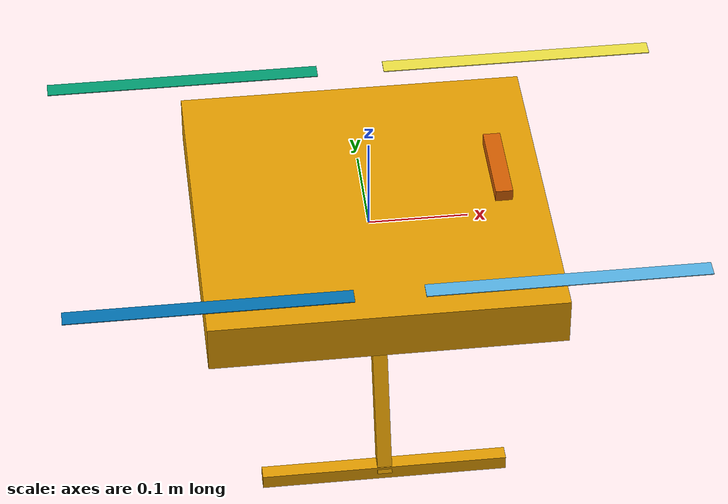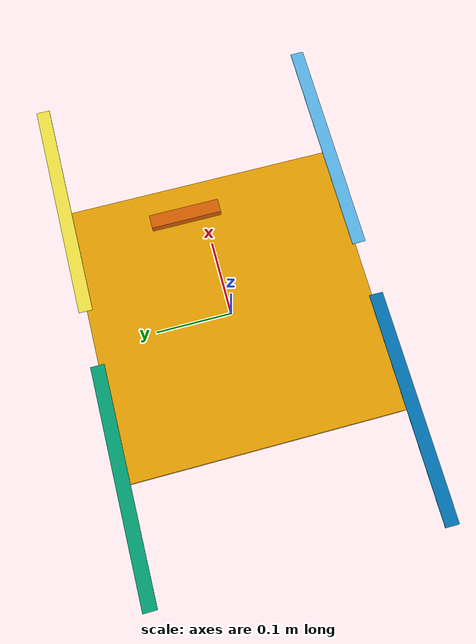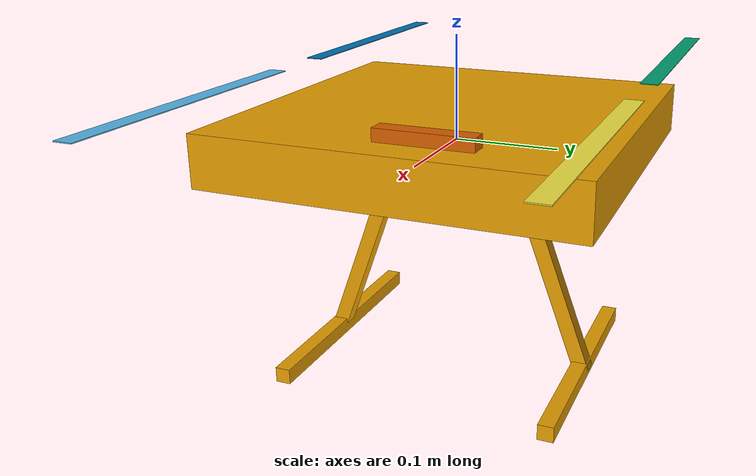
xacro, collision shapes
<?xml version="1.0"?>
<robot name="x500_with_depth_camera" xmlns:xacro="http://ros.org/wiki/xacro">

  <!-- Include the x500 base macro -->
  <xacro:include filename="$(find x500_description)/urdf/x500.urdf.xacro"/>

  <!-- Include the depth camera macro -->
  <xacro:include filename="$(find x500_description)/urdf/depth_camera.urdf.xacro"/>

  <!-- Instantiate the x500 base -->
  <xacro:x500_base name="x500">
    <origin xyz="0 0 0" rpy="0 0 0"/>
  </xacro:x500_base>

  <!-- Attach the depth camera to the front of the drone -->
  <xacro:depth_camera name="front" parent="base_link">
    <origin xyz=".12 .03 .0" rpy="-1.5708 0.0 -1.5708"/>
  </xacro:depth_camera>

</robot>

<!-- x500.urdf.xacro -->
<robot name="x500_base" xmlns:xacro="http://ros.org/wiki/xacro">

  <xacro:macro name="x500_base" params="name *origin">

    <link name="base_link">
      <inertial>
        <mass value="2.0"/>
        <origin xyz="0 0 0" rpy="0 0 0"/>
        <inertia ixx="0.02166666666666667" ixy="0" ixz="0" iyy="0.02166666666666667" iyz="0" izz="0.04000000000000001"/>
      </inertial>
      <visual>
        <origin xyz="0 0 .025" rpy="0 0 3.141592654"/>
        <geometry>
          <mesh filename="package://x500_description/meshes/x500/NXP-HGD-CF.dae" scale="1 1 1"/>
        </geometry>
      </visual>
      <visual>
        <origin xyz="0.174 0.174 .032" rpy="0 0 -.45"/>
        <geometry>
          <mesh filename="package://x500_description/meshes/x500/5010Base.dae" scale="1 1 1"/>
        </geometry>
      </visual>
      <visual>
        <origin xyz="-0.174 0.174 .032" rpy="0 0 -.45"/>
        <geometry>
          <mesh filename="package://x500_description/meshes/x500/5010Base.dae" scale="1 1 1"/>
        </geometry>
      </visual>
      <visual>
        <origin xyz="0.174 -0.174 .032" rpy="0 0 -.45"/>
        <geometry>
          <mesh filename="package://x500_description/meshes/x500/5010Base.dae" scale="1 1 1"/>
        </geometry>
      </visual>
      <visual>
        <origin xyz="-0.174 -0.174 .032" rpy="0 0 -.45"/>
        <geometry>
          <mesh filename="package://x500_description/meshes/x500/5010Base.dae" scale="1 1 1"/>
        </geometry>
      </visual>
      <visual>
        <origin xyz="0.047 .001 .043" rpy="1 0 1.57"/>
        <geometry>
          <box size=".013 .007 0.001"/>
        </geometry>
      </visual>
      <visual>
        <origin xyz="-0.023 0 .0515" rpy="0 0 -1.57"/>
        <geometry>
          <box size=".013 .007 0.001"/>
        </geometry>
      </visual>
      <visual>
        <origin xyz="-.03 0 .0515" rpy="0 0 -1.57"/>
        <geometry>
          <box size=".032 .0034 0.001"/>
        </geometry>
      </visual>
      <collision>
        <origin xyz="0 0 .007" rpy="0 0 0"/>
        <geometry>
          <box size="0.35355339059327373 0.35355339059327373 0.05"/>
        </geometry>
      </collision>
      <collision>
        <origin xyz="0 -0.098 -.123" rpy="-0.35 0 0"/>
        <geometry>
          <box size="0.015 0.015 0.21"/>
        </geometry>
      </collision>
      <collision>
        <origin xyz="0 0.098 -.123" rpy="0.35 0 0"/>
        <geometry>
          <box size="0.015 0.015 0.21"/>
        </geometry>
      </collision>
      <collision>
        <origin xyz="0 -0.132 -.2195" rpy="0 0 0"/>
        <geometry>
          <box size="0.25 0.015 0.015"/>
        </geometry>
      </collision>
      <collision>
        <origin xyz="0 0.132 -.2195" rpy="0 0 0"/>
        <geometry>
          <box size="0.25 0.015 0.015"/>
        </geometry>
      </collision>
    </link>

    <link name="rotor_0">
      <inertial>
        <mass value="0.016076923076923075"/>
        <origin xyz="0 0 0" rpy="0 0 0"/>
        <inertia ixx="3.8464910483993325e-07" ixy="0" ixz="0" iyy="2.6115851691700804e-05" iyz="0" izz="2.649858234714004e-05"/>
      </inertial>
      <visual>
        <origin xyz="-0.022 -0.14638461538461536 -0.016" rpy="0 0 0"/>
        <geometry>
          <mesh filename="package://x500_description/meshes/x500/1345_prop_ccw.stl" scale="0.8461538461538461 0.8461538461538461 0.8461538461538461"/>
        </geometry>
      </visual>
      <visual>
        <origin xyz="0 0 -.032" rpy="0 0 0"/>
        <geometry>
          <mesh filename="package://x500_description/meshes/x500/5010Bell.dae" scale="1 1 1"/>
        </geometry>
      </visual>
      <collision>
        <origin xyz="0 0 0" rpy="0 0 0"/>
        <geometry>
          <box size="0.2792307692307692 0.016923076923076923 0.0008461538461538462"/>
        </geometry>
      </collision>
    </link>

    <joint name="rotor_0_joint" type="continuous">
      <parent link="base_link"/>
      <child link="rotor_0"/>
      <origin xyz="0.174 -0.174 0.06" rpy="0 0 0"/>
      <axis xyz="0 0 1"/>
    </joint>

    <link name="rotor_1">
      <inertial>
        <mass value="0.016076923076923075"/>
        <origin xyz="0 0 0" rpy="0 0 0"/>
        <inertia ixx="3.8464910483993325e-07" ixy="0" ixz="0" iyy="2.6115851691700804e-05" iyz="0" izz="2.649858234714004e-05"/>
      </inertial>
      <visual>
        <origin xyz="-0.022 -0.14638461538461536 -0.016" rpy="0 0 0"/>
        <geometry>
          <mesh filename="package://x500_description/meshes/x500/1345_prop_ccw.stl" scale="0.8461538461538461 0.8461538461538461 0.8461538461538461"/>
        </geometry>
      </visual>
      <visual>
        <origin xyz="0 0 -.032" rpy="0 0 0"/>
        <geometry>
          <mesh filename="package://x500_description/meshes/x500/5010Bell.dae" scale="1 1 1"/>
        </geometry>
      </visual>
      <collision>
        <origin xyz="0 0 0" rpy="0 0 0"/>
        <geometry>
          <box size="0.2792307692307692 0.016923076923076923 0.0008461538461538462"/>
        </geometry>
      </collision>
    </link>

    <joint name="rotor_1_joint" type="continuous">
      <parent link="base_link"/>
      <child link="rotor_1"/>
      <origin xyz="-0.174 0.174 0.06" rpy="0 0 0"/>
      <axis xyz="0 0 1"/>
    </joint>

    <link name="rotor_2">
      <inertial>
        <mass value="0.016076923076923075"/>
        <origin xyz="0 0 0" rpy="0 0 0"/>
        <inertia ixx="3.8464910483993325e-07" ixy="0" ixz="0" iyy="2.6115851691700804e-05" iyz="0" izz="2.649858234714004e-05"/>
      </inertial>
      <visual>
        <origin xyz="-0.022 -0.14638461538461536 -0.016" rpy="0 0 0"/>
        <geometry>
          <mesh filename="package://x500_description/meshes/x500/1345_prop_cw.stl" scale="0.8461538461538461 0.8461538461538461 0.8461538461538461"/>
        </geometry>
      </visual>
      <visual>
        <origin xyz="0 0 -.032" rpy="0 0 0"/>
        <geometry>
          <mesh filename="package://x500_description/meshes/x500/5010Bell.dae" scale="1 1 1"/>
        </geometry>
      </visual>
      <collision>
        <origin xyz="0 0 0" rpy="0 0 0"/>
        <geometry>
          <box size="0.2792307692307692 0.016923076923076923 0.0008461538461538462"/>
        </geometry>
      </collision>
    </link>

    <joint name="rotor_2_joint" type="continuous">
      <parent link="base_link"/>
      <child link="rotor_2"/>
      <origin xyz="0.174 0.174 0.06" rpy="0 0 0"/>
      <axis xyz="0 0 1"/>
    </joint>

    <link name="rotor_3">
      <inertial>
        <mass value="0.016076923076923075"/>
        <origin xyz="0 0 0" rpy="0 0 0"/>
        <inertia ixx="3.8464910483993325e-07" ixy="0" ixz="0" iyy="2.6115851691700804e-05" iyz="0" izz="2.649858234714004e-05"/>
      </inertial>
      <visual>
        <origin xyz="-0.022 -0.14638461538461536 -0.016" rpy="0 0 0"/>
        <geometry>
          <mesh filename="package://x500_description/meshes/x500/1345_prop_cw.stl" scale="0.8461538461538461 0.8461538461538461 0.8461538461538461"/>
        </geometry>
      </visual>
      <visual>
        <origin xyz="0 0 -.032" rpy="0 0 0"/>
        <geometry>
          <mesh filename="package://x500_description/meshes/x500/5010Bell.dae" scale="1 1 1"/>
        </geometry>
      </visual>
      <collision>
        <origin xyz="0 0 0" rpy="0 0 0"/>
        <geometry>
          <box size="0.2792307692307692 0.016923076923076923 0.0008461538461538462"/>
        </geometry>
      </collision>
    </link>

    <joint name="rotor_3_joint" type="continuous">
      <parent link="base_link"/>
      <child link="rotor_3"/>
      <origin xyz="-0.174 -0.174 0.06" rpy="0 0 0"/>
      <axis xyz="0 0 1"/>
    </joint>

    <gazebo reference="base_link">
      <sensor name="air_pressure_sensor" type="air_pressure">
        <always_on>1</always_on>
        <update_rate>50</update_rate>
        <air_pressure>
          <pressure>
            <noise type="gaussian">
              <mean>0</mean>
              <stddev>3</stddev>
            </noise>
          </pressure>
        </air_pressure>
      </sensor>
      <sensor name="magnetometer_sensor" type="magnetometer">
        <always_on>1</always_on>
        <update_rate>100</update_rate>
        <magnetometer>
          <x>
            <noise type="gaussian">
              <stddev>0.0001</stddev>
            </noise>
          </x>
          <y>
            <noise type="gaussian">
              <stddev>0.0001</stddev>
            </noise>
          </y>
          <z>
            <noise type="gaussian">
              <stddev>0.0001</stddev>
            </noise>
          </z>
        </magnetometer>
      </sensor>
      <sensor name="imu_sensor" type="imu">
        <always_on>1</always_on>
        <update_rate>250</update_rate>
        <imu>
          <angular_velocity>
            <x>
              <noise type="gaussian">
                <mean>0.0</mean>
                <stddev>0.0008726646</stddev>
              </noise>
            </x>
            <y>
              <noise type="gaussian">
                <mean>0.0</mean>
                <stddev>0.0008726646</stddev>
              </noise>
            </y>
            <z>
              <noise type="gaussian">
                <mean>0.0</mean>
                <stddev>0.0008726646</stddev>
              </noise>
            </z>
          </angular_velocity>
          <linear_acceleration>
            <x>
              <noise type="gaussian">
                <mean>0.0</mean>
                <stddev>0.00637</stddev>
              </noise>
            </x>
            <y>
              <noise type="gaussian">
                <mean>0.0</mean>
                <stddev>0.00637</stddev>
              </noise>
            </y>
            <z>
              <noise type="gaussian">
                <mean>0.0</mean>
                <stddev>0.00686</stddev>
              </noise>
            </z>
          </linear_acceleration>
        </imu>
      </sensor>
      <sensor name="navsat_sensor" type="navsat">
        <always_on>1</always_on>
        <update_rate>30</update_rate>
      </sensor>
    </gazebo>

  </xacro:macro>

</robot>

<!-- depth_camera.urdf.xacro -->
<robot name="OakD-Lite" xmlns:xacro="http://ros.org/wiki/xacro">

  <xacro:macro name="depth_camera" params="name parent *origin">

    <link name="camera_link">
      <inertial>
        <mass value="0.061"/>
        <origin xyz="0.00358 -0.03 .014" rpy="0 0 0.0"/>
        <inertia ixx="0.0000460804" ixy="0" ixz="0" iyy="0.0000055421" iyz="0" izz="0.0000436519"/>
      </inertial>
      <visual>
        <origin xyz="0 0 0" rpy="0.0 -1.5708 1.5708 "/>
        <geometry>
          <mesh filename="package://x500_description/meshes/camera/OakDLite.dae" scale="1 1 1"/>
        </geometry>
      </visual>
      <collision>
        <origin xyz="0.00358 -0.03 .014" rpy="0.0 -1.5708 1.5708 "/>
        <geometry>
          <box size="0.0175 0.091 0.028"/>
        </geometry>
      </collision>
    </link>

    <joint name="camera_joint" type="fixed">
      <parent link="${parent}"/>
      <child link="camera_link"/>
      <xacro:insert_block name="origin"/>
    </joint>

    <gazebo reference="camera_link">
      <sensor name="IMX214" type="camera">
        <pose>0.01233 -0.03 .01878 0 0 0</pose>
        <camera>
          <horizontal_fov>1.204</horizontal_fov>
          <image>
            <width>1920</width>
            <height>1080</height>
          </image>
          <clip>
            <near>0.1</near>
            <far>100</far>
          </clip>
        </camera>
        <always_on>1</always_on>
        <update_rate>30</update_rate>
        <visualize>true</visualize>
      </sensor>
      <sensor name="StereoOV7251" type="depth_camera">
        <pose>0.01233 -0.03 .01878 0 0 0</pose>
        <camera>
          <horizontal_fov>1.394</horizontal_fov>
          <image>
            <width>640</width>
            <height>480</height>
            <format>R_FLOAT32</format>
          </image>
          <clip>
            <near>0.2</near>
            <far>19.1</far>
          </clip>
        </camera>
        <always_on>1</always_on>
        <update_rate>30</update_rate>
        <visualize>true</visualize>
        <topic>depth_camera</topic>
      </sensor>
    </gazebo>

  </xacro:macro>

</robot>
